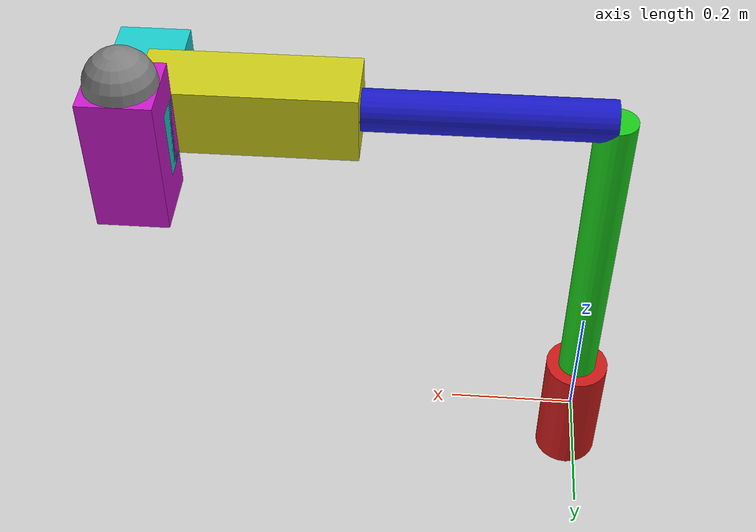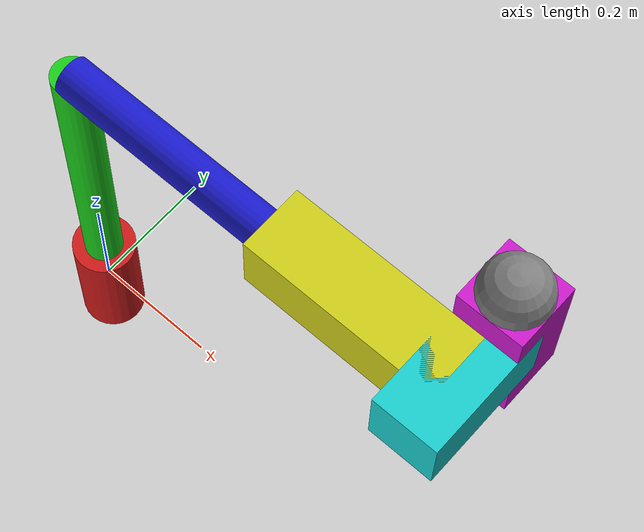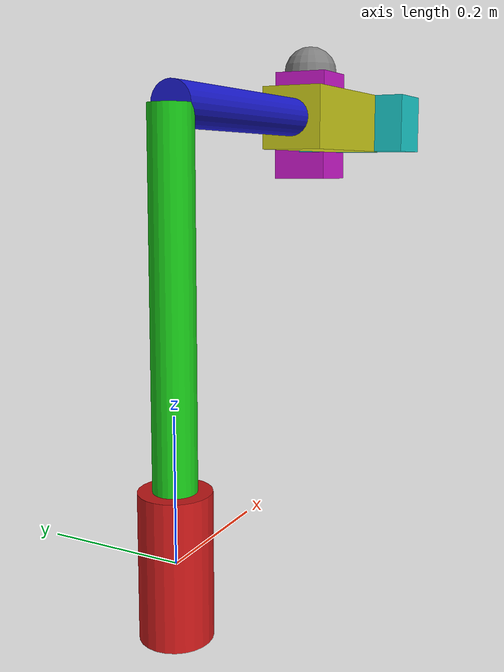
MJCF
<mujoco model="abb_irb120_robotic_arm">
  <option timestep="0.002" />
  <worldbody>
    <body name="base" pos="0 0 0">
      <joint name="joint1" type="hinge" axis="0 0 1" pos="0 0 0.1" />
      <geom type="cylinder" size="0.05 0.1" rgba="0.8 0.1 0.1 1" />
      <body name="link1" pos="0 0 0.1">
        <joint name="joint2" type="hinge" axis="0 1 0" pos="0 0 0.25" limited="true" range="-1.5708 1.5708"/>
        <geom type="cylinder" fromto="0 0 0 0 0 0.5" size="0.03" rgba="0.1 0.8 0.1 1" />
        <body name="link2" pos="0 0 0.5">
          <joint name="joint3" type="hinge" axis="0 1 0" pos="0.25 0 0" limited="true" range="-1.5708 1.5708"/>
          <geom type="cylinder" fromto="0 0 0 0.5 0 0" size="0.03" rgba="0.1 0.1 0.8 1" />
          <body name="link3" pos="0.5 0 0">
            <joint name="joint4" type="hinge" axis="0 0 1" pos="0 0 0" limited="true" range="-1.5708 1.5708"/>
            <geom type="box" size="0.15 0.05 0.05" rgba="0.8 0.8 0.1 1" />
            <body name="link4" pos="0.15 0 0">
              <joint name="joint5" type="hinge" axis="0 1 0" pos="0 0 0" limited="true" range="-1.5708 1.5708"/>
              <geom type="box" size="0.05 0.1 0.05" rgba="0.1 0.8 0.8 1" />
              <body name="link5" pos="0 0.1 0">
                <joint name="joint6" type="hinge" axis="0 0 1" pos="0 0 0" limited="true" range="-1.5708 1.5708"/>
                <geom type="box" size="0.05 0.05 0.1" rgba="0.8 0.1 0.8 1" />
                <body name="end_effector" pos="0 0 0.1">
                  <geom type="sphere" size="0.05" rgba="0.5 0.5 0.5 1" />
                </body>
              </body>
            </body>
          </body>
        </body>
      </body>
    </body>
  </worldbody>
  <actuator>
    <motor joint="joint1" ctrlrange="-1 1" ctrllimited="true" />
    <motor joint="joint2" ctrlrange="-1 1" ctrllimited="true" />
    <motor joint="joint3" ctrlrange="-1 1" ctrllimited="true" />
    <motor joint="joint4" ctrlrange="-1 1" ctrllimited="true" />
    <motor joint="joint5" ctrlrange="-1 1" ctrllimited="true" />
    <motor joint="joint6" ctrlrange="-1 1" ctrllimited="true" />
  </actuator>
</mujoco>
